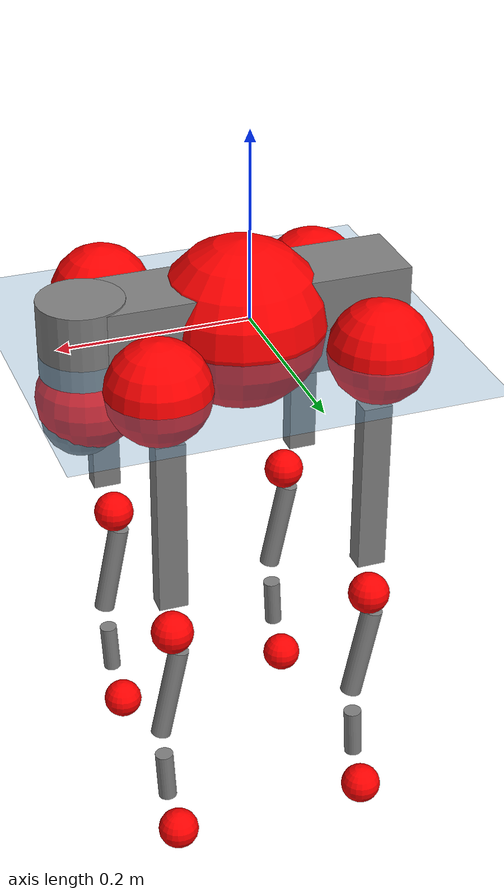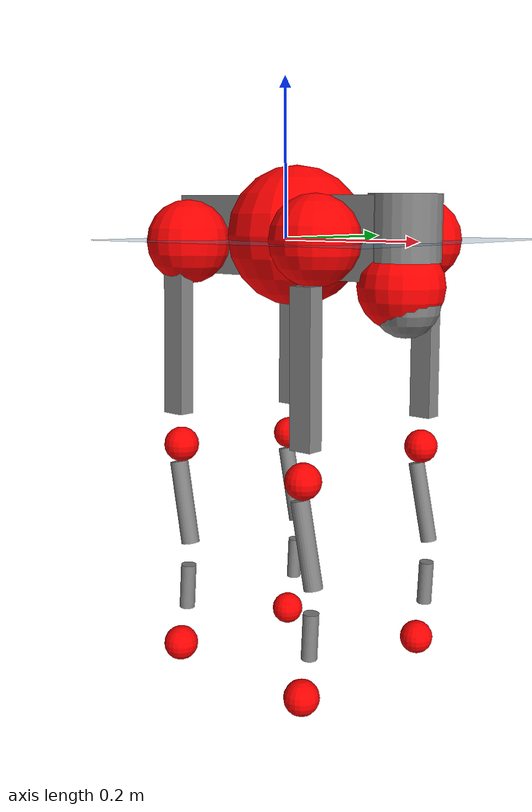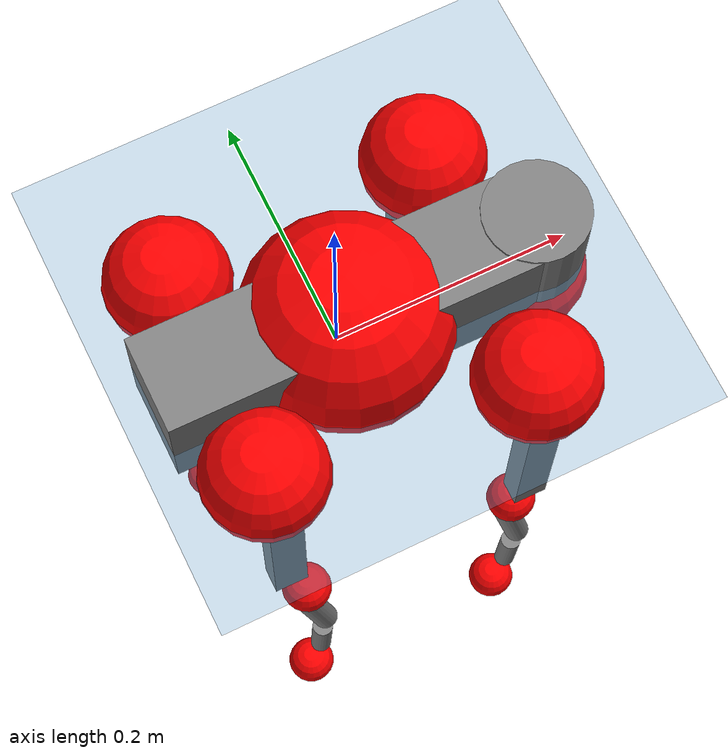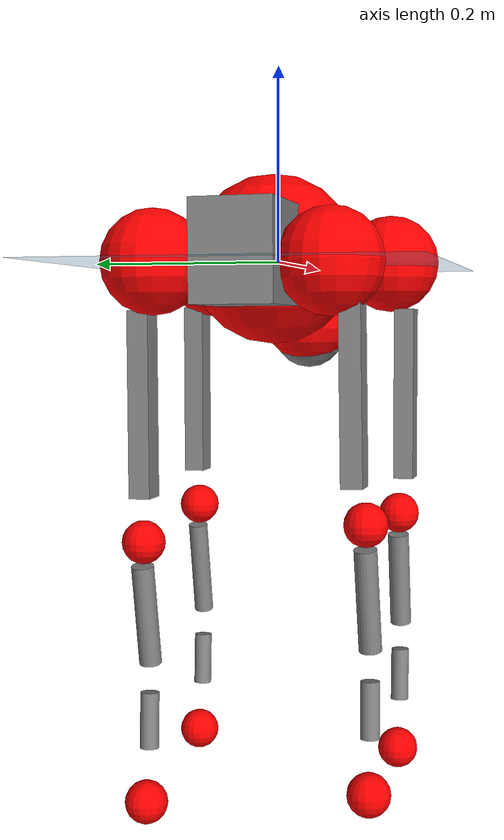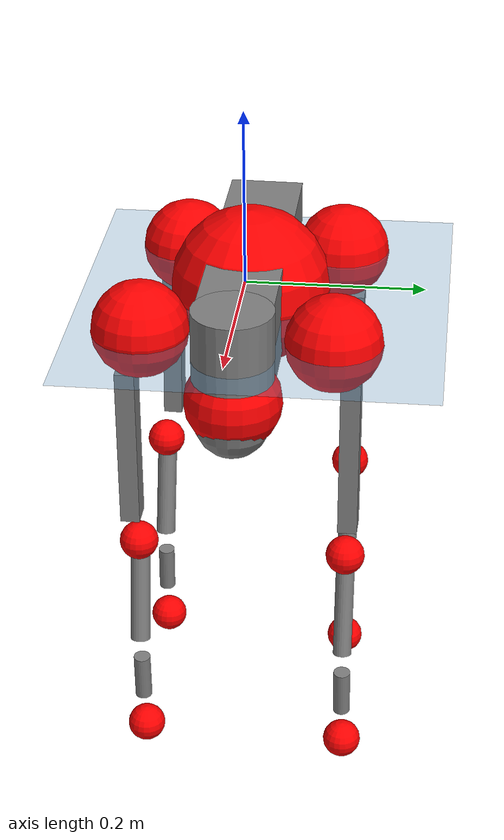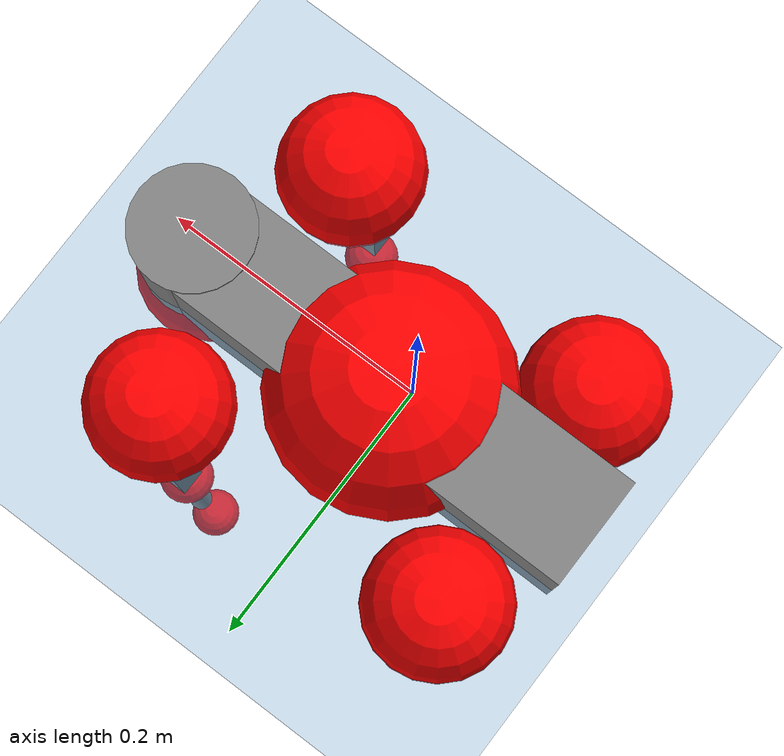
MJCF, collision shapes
<mujoco model="go2">
  <compiler angle="radian" assetdir="assets" balanceinertia="true" inertiafromgeom="false"/>

  <option timestep="0.005" density="1.2" viscosity="2e-05"/>

  <size nkey="1"/>

  <visual>
    <quality shadowsize="8192"/>
    <map shadowclip="0.5"/>
  </visual>

  <default>
    <default class="/">
      <geom contype="0" conaffinity="0" group="1" solref="-1000 -80"/>
      <site size="0.01 0.005 0.005" group="5"/>
      <general forcelimited="true" biastype="affine" gainprm="20" biasprm="0 -20 -0.5"/>
      <default class="go2">
        <joint armature="0.01" damping="0.01" frictionloss="0.2"/>
        <geom condim="1" margin="0.001"/>
        <default class="visual">
          <geom type="mesh" group="2"/>
        </default>
        <default class="collision">
          <geom group="3"/>
          <default class="foot">
            <geom size="0.022 0 0" condim="6" priority="1" friction="0.8 0.02 0.01" solimp="0.015 1 0.022"/>
          </default>
        </default>
        <default class="reward_collision_sphere">
          <geom group="5" rgba="1 0 0 1"/>
        </default>
      </default>
    </default>
  </default>

  <asset>
    <texture type="skybox" colorspace="auto" name="//unnamed_texture_0" builtin="gradient" rgb1="0.95 0.95 0.95" rgb2="0.95 0.95 0.95" width="100" height="600"/>
    <texture type="2d" colorspace="auto" name="texplane" builtin="checker" rgb1="0.345 0.575 0.748" rgb2="0.345 0.575 0.748" markrgb="1 1 1" width="512" height="512"/>
    <material name="MatPlane" class="/" texture="texplane" texuniform="true" texrepeat="2 2" specular="0.9"/>
    <material name="metal" class="/" rgba="0.9 0.95 0.95 1"/>
    <material name="black" class="/" rgba="0 0 0 1"/>
    <material name="white" class="/"/>
    <material name="gray" class="/" rgba="0.671705 0.692426 0.77427 1"/>
    <mesh name="base_0" class="/" file="base_0.obj"/>
    <mesh name="base_1" class="/" file="base_1.obj"/>
    <mesh name="base_2" class="/" file="base_2.obj"/>
    <mesh name="base_3" class="/" file="base_3.obj"/>
    <mesh name="base_4" class="/" file="base_4.obj"/>
    <mesh name="hip_0" class="/" file="hip_0.obj"/>
    <mesh name="hip_1" class="/" file="hip_1.obj"/>
    <mesh name="thigh_0" class="/" file="thigh_0.obj"/>
    <mesh name="thigh_1" class="/" file="thigh_1.obj"/>
    <mesh name="thigh_mirror_0" class="/" file="thigh_mirror_0.obj"/>
    <mesh name="thigh_mirror_1" class="/" file="thigh_mirror_1.obj"/>
    <mesh name="calf_0" class="/" file="calf_0.obj"/>
    <mesh name="calf_1" class="/" file="calf_1.obj"/>
    <mesh name="calf_mirror_0" class="/" file="calf_mirror_0.obj"/>
    <mesh name="calf_mirror_1" class="/" file="calf_mirror_1.obj"/>
    <mesh name="foot" class="/" file="foot.obj"/>
  </asset>

  <worldbody>
    <geom name="floor" class="/" size="100 100 0.125" type="plane" group="0" material="MatPlane"/>
    <light name="toplight_shadow" class="/" pos="0 0 5" dir="0.0990148 0.0990148 -0.990148" type="directional" ambient="0.04 0.04 0.04" diffuse="0.55 0.55 0.55" specular="0.12 0.12 0.12"/>
    <light name="toplight_fill" class="/" pos="0 0 5" dir="0.0990148 0.0990148 -0.990148" type="directional" castshadow="false" ambient="0.04 0.04 0.04" diffuse="0.3 0.3 0.3" specular="0.08 0.08 0.08"/>
    <body name="trunk" childclass="go2" pos="0.0119453 0.00777195 0.00390849" quat="0.999989 -0.00376226 0.00212519 -0.00174835">
      <inertial pos="0.0247418 -0.000177972 -0.00738232" quat="-0.0128795 0.703279 0.000323701 0.710797" mass="4.45649" diaginertia="0.00671305 0.0348014 0.0636856"/>
      <joint name="//unnamed_joint_0" type="free" armature="0" damping="0" frictionloss="0"/>
      <geom name="//unnamed_geom_1" class="visual" material="black" mesh="base_0"/>
      <geom name="//unnamed_geom_2" class="visual" material="black" mesh="base_1"/>
      <geom name="//unnamed_geom_3" class="visual" material="black" mesh="base_2"/>
      <geom name="//unnamed_geom_4" class="visual" material="white" mesh="base_3"/>
      <geom name="//unnamed_geom_5" class="visual" material="gray" mesh="base_4"/>
      <geom name="trunk_1" class="collision" size="0.165449 0.0411205 0.0501362" type="box"/>
      <geom name="trunk_2" class="collision" size="0.0439791 0.0395812" pos="0.163445 0 0.0125016" type="cylinder"/>
      <geom name="trunk_3" class="collision" size="0.0413404" pos="0.168033 0 -0.0750098"/>
      <geom name="//unnamed_geom_9" class="reward_collision_sphere" size="0.0879582"/>
      <geom name="//unnamed_geom_10" class="reward_collision_sphere" size="0.0527749" pos="0.160578 0 -0.0562574"/>
      <site name="imu" pos="-0.00838328 -0.0177592 0.0646942" size="0.00879582"/>
      <camera name="track" pos="0 -1.63018 0" quat="0.707107 0.707107 0 0" mode="trackcom"/>
      <camera name="ego_camera" pos="0.178929 0 0.0562574" quat="-0.5 -0.5 0.5 0.5"/>
      <body name="FL_hip" pos="0.117535 0.0447807 -0.00408061" quat="0.999982 0.00156599 -0.00103173 -0.00565939">
        <inertial pos="0.00977809 0.00719562 0.00557497" quat="0.497942 0.498525 0.508303 0.495132" mass="0.403516" diaginertia="4.8217e-05 0.000213248 0.00118399"/>
        <joint name="FL_hip_joint" pos="0 0 0" axis="0.99999 -0.00415505 -0.00169776" stiffness="0.024515" range="-1.05954 1.24985" armature="0.00498922" damping="0.0436378" frictionloss="0.138141"/>
        <geom name="//unnamed_geom_11" class="visual" material="metal" mesh="hip_0"/>
        <geom name="//unnamed_geom_12" class="visual" material="gray" mesh="hip_1"/>
        <geom name="//unnamed_geom_13" class="collision" size="0.0404608 0.0175916" pos="0 0.0652073 0" quat="0.707107 0.707107 0 0" type="cylinder"/>
        <geom name="//unnamed_geom_14" class="reward_collision_sphere" size="0.0527749" pos="0 0.0570564 0"/>
        <body name="FL_thigh" pos="-0.00166067 0.0763272 -0.00368336" quat="1 0.000684732 -0.000366445 0.00033866">
          <inertial pos="-0.0140418 -0.017894 -0.0515602" quat="0.83003 0.0874967 -0.0189477 0.550486" mass="0.818297" diaginertia="0.000374104 0.00207762 0.00286117"/>
          <joint name="FL_thigh_joint" pos="0 0 0" axis="-0.0197813 0.999621 0.0191689" range="-1.38288 3.31687" armature="0.00508821" damping="0.0671652" frictionloss="0.129965"/>
          <geom name="//unnamed_geom_15" class="visual" material="metal" mesh="thigh_0"/>
          <geom name="//unnamed_geom_16" class="visual" material="gray" mesh="thigh_1"/>
          <geom name="//unnamed_geom_17" class="collision" size="0.0936755 0.0107749 0.0149529" pos="0 0 -0.133142" quat="0.707107 0 0.707107 0" type="box"/>
          <body name="FL_calf" pos="-0.00151751 -0.00240266 -0.267068" quat="0.999994 0.00187954 0.00141336 -0.00267125">
            <inertial pos="-0.00276848 -0.00605503 -0.168381" quat="0.719693 0.0389395 -0.0379432 0.692161" mass="0.158297" diaginertia="9.54692e-05 0.000488629 0.000176127"/>
            <joint name="FL_calf_joint" pos="0 0 0" axis="-0.00219973 0.999861 0.0165408" stiffness="0.00732108" range="-2.7341 -0.642279" armature="0.0116552" damping="0.00192132" frictionloss="0.179365"/>
            <geom name="//unnamed_geom_18" class="visual" material="gray" mesh="calf_0"/>
            <geom name="//unnamed_geom_19" class="visual" material="black" mesh="calf_1"/>
            <geom name="FL_calf0" class="collision" size="0.010555 0.0527749" pos="0.00458793 0 -0.0750098" quat="0.994493 0 -0.104807 0" type="cylinder"/>
            <geom name="//unnamed_geom_21" class="collision" size="0.0096754 0.0285864" pos="0.0114698 0 -0.185024" quat="0.999688 0 0.0249974 0" type="cylinder"/>
            <geom name="//unnamed_geom_22" class="visual" pos="0 0 -0.266285" quat="1 0 0 0" material="black" mesh="foot"/>
            <geom name="FL_foot" class="foot" size="0.0181153" pos="-0.00114698 0 -0.266285"/>
            <geom name="//unnamed_geom_24" class="reward_collision_sphere" size="0.0219895"/>
            <geom name="//unnamed_geom_25" class="reward_collision_sphere" size="0.0219895" pos="-0.00114698 0 -0.266285"/>
            <site name="FL_foot" class="foot" pos="-0.00114698 0 -0.266285" size="0.00879582"/>
          </body>
        </body>
      </body>
      <body name="FR_hip" pos="0.114061 -0.0478222 -0.00154386" quat="0.999997 -0.00225059 0.000120243 0.000862525">
        <inertial pos="-0.0121184 -0.00388592 -0.000114741" quat="0.494343 0.508172 0.499058 0.498324" mass="0.344051" diaginertia="4.99553e-05 0.000197567 0.0014389"/>
        <joint name="FR_hip_joint" pos="0 0 0" axis="0.999958 -0.00299787 -0.00866047" stiffness="0.0553214" range="-1.16922 1.06074" armature="0.0142549" damping="0.0028716" frictionloss="0.0690866"/>
        <geom name="//unnamed_geom_26" class="visual" pos="0 -3.79017e-09 -1.62568e-07" quat="4.63268e-05 1 0 0" material="metal" mesh="hip_0"/>
        <geom name="//unnamed_geom_27" class="visual" pos="0 -6.14432e-09 4.02093e-07" quat="4.63268e-05 1 0 0" material="gray" mesh="hip_1"/>
        <geom name="//unnamed_geom_28" class="collision" size="0.0404608 0.0175916" pos="0 -0.0652073 0" quat="0.707107 0.707107 0 0" type="cylinder"/>
        <geom name="//unnamed_geom_29" class="reward_collision_sphere" size="0.0527749" pos="0 -0.0570564 0"/>
        <body name="FR_thigh" pos="0.00113058 -0.0737736 -0.0106313" quat="0.999983 0.00472717 -0.000825306 -0.00322256">
          <inertial pos="0.00595632 0.0308487 -0.0383447" quat="0.552278 -0.0182087 0.0847872 0.829137" mass="0.951609" diaginertia="0.000392398 0.00231764 0.0031252"/>
          <joint name="FR_thigh_joint" pos="0 0 0" axis="-0.00325464 -0.999991 0.00267605" range="-3.43638 1.64407" armature="0.00917486" damping="0" frictionloss="0.137598"/>
          <geom name="//unnamed_geom_30" class="visual" material="metal" mesh="thigh_mirror_0"/>
          <geom name="//unnamed_geom_31" class="visual" material="gray" mesh="thigh_mirror_1"/>
          <geom name="//unnamed_geom_32" class="collision" size="0.0936755 0.0107749 0.0149529" pos="0 0 -0.133142" quat="0.707107 0 0.707107 0" type="box"/>
          <body name="FR_calf" pos="-0.00726018 0.00518703 -0.265666" quat="1 -0.000134101 4.81015e-05 -5.65282e-05">
            <inertial pos="-0.0019582 8.99864e-06 -0.174445" quat="0.702967 -0.00298317 0.00286416 0.711211" mass="0.140577" diaginertia="7.12745e-05 0.000510672 0.000144755"/>
            <joint name="FR_calf_joint" pos="0 0 0" axis="0.0163502 -0.998943 0.0429579" stiffness="0.0312233" range="0.855946 2.72284" armature="0.00907101" damping="0" frictionloss="0.157762"/>
            <geom name="//unnamed_geom_33" class="visual" material="gray" mesh="calf_mirror_0"/>
            <geom name="//unnamed_geom_34" class="visual" material="black" mesh="calf_mirror_1"/>
            <geom name="FR_calf0" class="collision" size="0.0114346 0.0527749" pos="0.00573491 0 -0.0750098" quat="0.995004 0 -0.0998334 0" type="cylinder"/>
            <geom name="//unnamed_geom_36" class="collision" size="0.0096754 0.0285864" pos="0.0114698 0 -0.185024" quat="0.999688 0 0.0249974 0" type="cylinder"/>
            <geom name="//unnamed_geom_37" class="visual" pos="0 0 -0.266285" quat="1 0 0 0" material="black" mesh="foot"/>
            <geom name="FR_foot" class="foot" size="0.0162358" pos="-0.00114698 0 -0.266285"/>
            <geom name="//unnamed_geom_39" class="reward_collision_sphere" size="0.0219895"/>
            <geom name="//unnamed_geom_40" class="reward_collision_sphere" size="0.0219895" pos="-0.00114698 0 -0.266285"/>
            <site name="FR_foot" class="foot" pos="-0.00114698 0 -0.266285" size="0.00879582"/>
          </body>
        </body>
      </body>
      <body name="RL_hip" pos="-0.110172 0.0369962 -0.0061611" quat="0.999976 -0.00219232 -0.0031807 0.00567752">
        <inertial pos="-0.00885799 0.00331248 5.23783e-05" quat="0.504786 0.498277 0.498803 0.498104" mass="0.456997" diaginertia="5.51864e-05 0.000194627 0.00152274"/>
        <joint name="RL_hip_joint" pos="0 0 0" axis="-0.999954 -0.00822567 0.00493604" range="-1.02743 1.04121" armature="0.00858742" damping="0" frictionloss="0.14237"/>
        <geom name="//unnamed_geom_41" class="visual" pos="5.89489e-09 0 1.15553e-06" quat="4.63268e-05 0 1 0" material="metal" mesh="hip_0"/>
        <geom name="//unnamed_geom_42" class="visual" pos="9.55632e-09 0 1.02479e-06" quat="4.63268e-05 0 1 0" material="gray" mesh="hip_1"/>
        <geom name="//unnamed_geom_43" class="collision" size="0.0404608 0.0175916" pos="0 0.0652073 0" quat="0.707107 0.707107 0 0" type="cylinder"/>
        <geom name="//unnamed_geom_44" class="reward_collision_sphere" size="0.0527749" pos="0 0.0570564 0"/>
        <body name="RL_thigh" pos="0.0112913 0.0734742 -0.00814948" quat="0.999984 0.00231935 0.00313965 -0.00421103">
          <inertial pos="-0.00371092 -0.017072 -0.0398995" quat="0.82716 0.0364749 -0.036479 0.559594" mass="0.883974" diaginertia="0.00035935 0.00234823 0.00259121"/>
          <joint name="RL_thigh_joint" pos="0 0 0" axis="-0.00577887 0.999949 -0.0082325" stiffness="0.00666528" range="-0.513334 4.4899" armature="0.0116592" damping="0.0673219" frictionloss="0.205708"/>
          <geom name="//unnamed_geom_45" class="visual" material="metal" mesh="thigh_0"/>
          <geom name="//unnamed_geom_46" class="visual" material="gray" mesh="thigh_1"/>
          <geom name="//unnamed_geom_47" class="collision" size="0.0936755 0.0107749 0.0149529" pos="0 0 -0.133142" quat="0.707107 0 0.707107 0" type="box"/>
          <body name="RL_calf" pos="-0.0041932 -0.000703947 -0.27139" quat="1 -9.8954e-05 -0.000213836 -0.000471285">
            <inertial pos="0.00361609 0.000398283 -0.182944" quat="0.711228 -0.00267631 -0.00577642 0.702933" mass="0.164255" diaginertia="9.2514e-05 0.000543625 0.000163464"/>
            <joint name="RL_calf_joint" pos="0 0 0" axis="0.0137611 0.999896 -0.00420062" range="-2.68065 -0.841727" armature="0.0112507" damping="0.0583089" frictionloss="0.164386"/>
            <geom name="//unnamed_geom_48" class="visual" material="gray" mesh="calf_0"/>
            <geom name="//unnamed_geom_49" class="visual" material="black" mesh="calf_1"/>
            <geom name="RL_calf0" class="collision" size="0.0114346 0.0527749" pos="0.00573491 0 -0.0750098" quat="0.995004 0 -0.0998334 0" type="cylinder"/>
            <geom name="//unnamed_geom_51" class="collision" size="0.0096754 0.0285864" pos="0.0114698 0 -0.185024" quat="0.999688 0 0.0249974 0" type="cylinder"/>
            <geom name="//unnamed_geom_52" class="visual" pos="0 0 -0.266285" quat="1 0 0 0" material="black" mesh="foot"/>
            <geom name="RL_foot" class="foot" size="0.0138565" pos="-0.00114698 0 -0.266285"/>
            <geom name="//unnamed_geom_54" class="reward_collision_sphere" size="0.0219895"/>
            <geom name="//unnamed_geom_55" class="reward_collision_sphere" size="0.0219895" pos="-0.00114698 0 -0.266285"/>
            <site name="RL_foot" class="foot" pos="-0.00114698 0 -0.266285" size="0.00879582"/>
          </body>
        </body>
      </body>
      <body name="RR_hip" pos="-0.108696 -0.0263532 -0.00900219" quat="0.999992 -0.00384456 0.000936958 -0.000204823">
        <inertial pos="0.00177626 -0.0106492 0.000164598" quat="0.486578 0.510589 0.459825 0.539539" mass="0.453023" diaginertia="4.96904e-05 0.000192588 0.00151277"/>
        <joint name="RR_hip_joint" pos="0 0 0" axis="-0.999985 0.00361471 0.00411763" range="-1.06401 1.04909" armature="0.00305753" damping="0" frictionloss="0.265853"/>
        <geom name="//unnamed_geom_56" class="visual" pos="-5.88652e-09 -3.79017e-09 1.3181e-06" quat="2.14617e-09 4.63268e-05 4.63268e-05 -1" material="metal" mesh="hip_0"/>
        <geom name="//unnamed_geom_57" class="visual" pos="-9.57701e-09 -6.14432e-09 6.227e-07" quat="2.14617e-09 4.63268e-05 4.63268e-05 -1" material="gray" mesh="hip_1"/>
        <geom name="//unnamed_geom_58" class="collision" size="0.0404608 0.0175916" pos="0 -0.0652073 0" quat="0.707107 0.707107 0 0" type="cylinder"/>
        <geom name="//unnamed_geom_59" class="reward_collision_sphere" size="0.0527749" pos="0 -0.0570564 0"/>
        <body name="RR_thigh" pos="0.00230626 -0.0768282 0.00953796" quat="0.999997 -0.00141519 0.000366921 -0.00183674">
          <inertial pos="-0.00290348 0.0232736 -0.0399486" quat="0.55249 -0.0254343 0.0886797 0.828399" mass="0.871685" diaginertia="0.000406421 0.00215915 0.00318934"/>
          <joint name="RR_thigh_joint" pos="0 0 0" axis="-0.0180678 -0.998421 -0.0531915" stiffness="0.0373853" range="-4.3187 0.39174" armature="0.00642036" damping="0.0135333" frictionloss="0.19564"/>
          <geom name="//unnamed_geom_60" class="visual" material="metal" mesh="thigh_mirror_0"/>
          <geom name="//unnamed_geom_61" class="visual" material="gray" mesh="thigh_mirror_1"/>
          <geom name="//unnamed_geom_62" class="collision" size="0.0936755 0.0107749 0.0149529" pos="0 0 -0.133142" quat="0.707107 0 0.707107 0" type="box"/>
          <body name="RR_calf" pos="0.0140904 -0.00832724 -0.264447" quat="1 -0.000258299 -0.00016117 0.000459441">
            <inertial pos="-0.00966018 -0.00127146 -0.182699" quat="0.691892 -0.00318458 -0.00930677 0.721934" mass="0.159089" diaginertia="9.88225e-05 0.000669237 0.000170082"/>
            <joint name="RR_calf_joint" pos="0 0 0" axis="-0.00528602 -0.999986 -0.000560705" stiffness="0.00430246" range="0.675076 2.45143" armature="0.0131258" damping="0.00552649" frictionloss="0.154614"/>
            <geom name="//unnamed_geom_63" class="visual" material="gray" mesh="calf_mirror_0"/>
            <geom name="//unnamed_geom_64" class="visual" material="black" mesh="calf_mirror_1"/>
            <geom name="RR_calf0" class="collision" size="0.0114346 0.0527749" pos="0.00573491 0 -0.0750098" quat="0.995004 0 -0.0998334 0" type="cylinder"/>
            <geom name="//unnamed_geom_66" class="collision" size="0.0096754 0.0285864" pos="0.0114698 0 -0.185024" quat="0.999688 0 0.0249974 0" type="cylinder"/>
            <geom name="//unnamed_geom_67" class="visual" pos="0 0 -0.266285" quat="1 0 0 0" material="black" mesh="foot"/>
            <geom name="RR_foot" class="foot" size="0.0193085" pos="-0.00114698 0 -0.266285"/>
            <geom name="//unnamed_geom_69" class="reward_collision_sphere" size="0.0219895"/>
            <geom name="//unnamed_geom_70" class="reward_collision_sphere" size="0.0219895" pos="-0.00114698 0 -0.266285"/>
            <site name="RR_foot" class="foot" pos="-0.00114698 0 -0.266285" size="0.00879582"/>
          </body>
        </body>
      </body>
    </body>
  </worldbody>

  <contact>
    <pair class="/" geom1="floor" geom2="FL_foot" name="//unnamed_contact_0"/>
    <pair class="/" geom1="floor" geom2="FR_foot" name="//unnamed_contact_1"/>
    <pair class="/" geom1="floor" geom2="RL_foot" name="//unnamed_contact_2"/>
    <pair class="/" geom1="floor" geom2="RR_foot" name="//unnamed_contact_3"/>
  </contact>

  <actuator>
    <general name="FL_hip" class="/" joint="FL_hip_joint" forcerange="-20.1714 20.1714" gainprm="17.4692" biasprm="0 -17.4692 -0.43884"/>
    <general name="FL_thigh" class="/" joint="FL_thigh_joint" forcerange="-25.1846 25.1846" gainprm="17.4692" biasprm="0 -17.4692 -0.43884"/>
    <general name="FL_calf" class="/" joint="FL_calf_joint" forcerange="-41.2616 41.2616" gainprm="17.4692" biasprm="0 -17.4692 -0.43884"/>
    <general name="FR_hip" class="/" joint="FR_hip_joint" forcerange="-10.7013 10.7013" gainprm="17.4692" biasprm="0 -17.4692 -0.43884"/>
    <general name="FR_thigh" class="/" joint="FR_thigh_joint" forcerange="-20.1514 20.1514" gainprm="17.4692" biasprm="0 -17.4692 -0.43884"/>
    <general name="FR_calf" class="/" joint="FR_calf_joint" forcerange="-52.542 52.542" gainprm="17.4692" biasprm="0 -17.4692 -0.43884"/>
    <general name="RL_hip" class="/" joint="RL_hip_joint" forcerange="-20.8699 20.8699" gainprm="17.4692" biasprm="0 -17.4692 -0.43884"/>
    <general name="RL_thigh" class="/" joint="RL_thigh_joint" forcerange="-20.9996 20.9996" gainprm="17.4692" biasprm="0 -17.4692 -0.43884"/>
    <general name="RL_calf" class="/" joint="RL_calf_joint" forcerange="-41.8361 41.8361" gainprm="17.4692" biasprm="0 -17.4692 -0.43884"/>
    <general name="RR_hip" class="/" joint="RR_hip_joint" forcerange="-20.7875 20.7875" gainprm="17.4692" biasprm="0 -17.4692 -0.43884"/>
    <general name="RR_thigh" class="/" joint="RR_thigh_joint" forcerange="-23.1466 23.1466" gainprm="17.4692" biasprm="0 -17.4692 -0.43884"/>
    <general name="RR_calf" class="/" joint="RR_calf_joint" forcerange="-23.5199 23.5199" gainprm="17.4692" biasprm="0 -17.4692 -0.43884"/>
  </actuator>

  <sensor>
    <gyro site="imu" name="imu_angular_velocity"/>
    <velocimeter site="imu" name="imu_linear_velocity"/>
    <framelinvel objtype="site" objname="FL_foot" name="FL_foot_global_linear_velocity"/>
    <framelinvel objtype="site" objname="FR_foot" name="FR_foot_global_linear_velocity"/>
    <framelinvel objtype="site" objname="RL_foot" name="RL_foot_global_linear_velocity"/>
    <framelinvel objtype="site" objname="RR_foot" name="RR_foot_global_linear_velocity"/>
  </sensor>

  <keyframe>
    <key name="home" qpos="0 0 0.325 1 0 0 0 0.1 0.8 -1.5 -0.1 -0.8 1.5 -0.1 0.8 -1.5 0.1 -0.8 1.5"/>
  </keyframe>
</mujoco>
